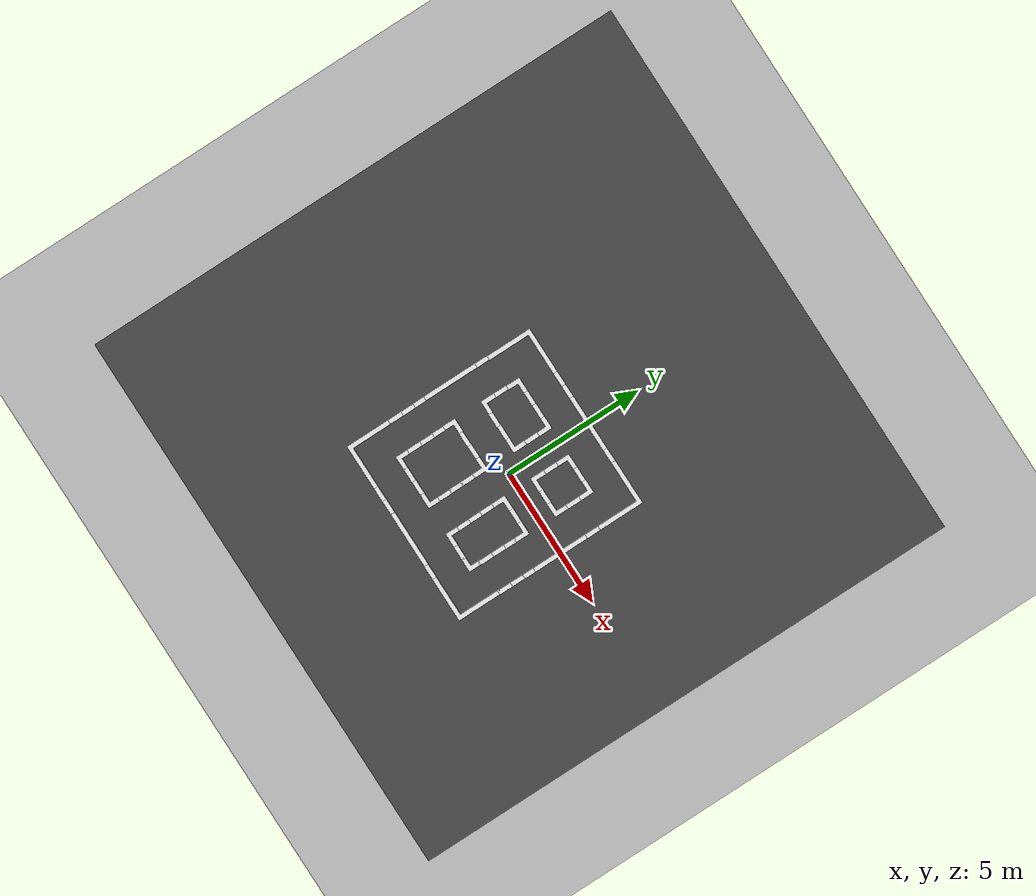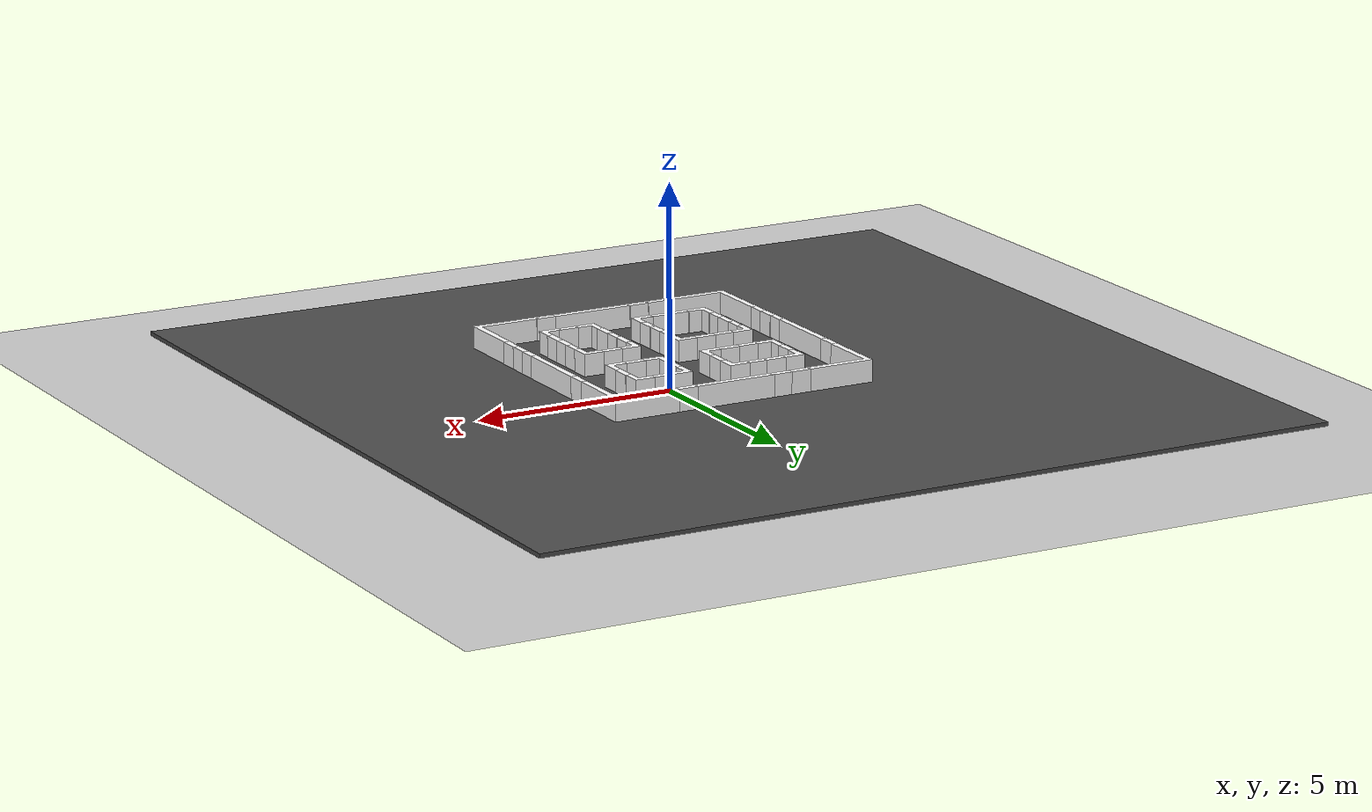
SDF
<sdf version="1.4">
 <world name="default">
  <light name="sun" type="directional">
   <pose>0 0 10 0 -0 0</pose>
   <diffuse>0.8 0.8 0.8 1</diffuse>
   <specular>0.2 0.2 0.2 1</specular>
   <attenuation>
    <range>1000</range>
    <constant>0.9</constant>
    <linear>0.01</linear>
    <quadratic>0.001</quadratic>
   </attenuation>
   <direction>-0.5 0.1 -0.9</direction>
  </light>
  <model name="ground_plane">
   <static>1</static>
   <link name="link">
    <collision name="collision">
     <geometry><plane><normal>0 0 1</normal><size>100 100</size></plane></geometry>
     <surface><friction><ode><mu>100</mu><mu2>50</mu2></ode></friction></surface>
    </collision>
    <visual name="visual">
     <cast_shadows>0</cast_shadows>
     <geometry><plane><normal>0 0 1</normal><size>100 100</size></plane></geometry>
     <material>
      <script><uri>file://media/materials/scripts/gazebo.material</uri><name>Gazebo/Grey</name></script>
     </material>
    </visual>
    <velocity_decay><linear>0</linear><angular>0</angular></velocity_decay>
   </link>
  </model>
  <physics type="ode">
   <max_step_size>0.001</max_step_size>
   <real_time_factor>1</real_time_factor>
   <real_time_update_rate>1000</real_time_update_rate>
   <gravity>0 0 -9.8</gravity>
  </physics>
  <scene><ambient>0.4 0.4 0.4 1</ambient><background>0.7 0.7 0.7 1</background><shadows>1</shadows></scene>
  <spherical_coordinates>
   <surface_model>EARTH_WGS84</surface_model>
   <latitude_deg>0</latitude_deg>
   <longitude_deg>0</longitude_deg>
   <elevation>0</elevation>
   <heading_deg>0</heading_deg>
  </spherical_coordinates>
  <model name="mc_street_junction">
   <static>1</static>
   <link name="street_link">
    <pose>0 0 0 1.5708 -0 0</pose>
    <collision name="street_collision">
     <geometry>
      <mesh>
       <uri>model://small_mascor_city_street_junction/meshes/maskor_city_street_straight_street.dae</uri>
       <scale>1 1 1</scale>
      </mesh>
     </geometry>
    </collision>
    <visual name="street_visual">
     <geometry>
      <mesh>
       <uri>model://small_mascor_city_street_junction/meshes/maskor_city_street_straight_street.dae</uri>
       <scale>1 1 1</scale>
      </mesh>
     </geometry>
    </visual>
    <velocity_decay><linear>0</linear><angular>0</angular></velocity_decay>
   </link>
   <link name="border_link">
    <pose>0 0 0.5 1.5708 -0 0</pose>
    <collision name="border_colision">
     <geometry>
      <mesh>
       <uri>model://small_mascor_city_street_junction/meshes/maskor_city_street_straight_border.dae</uri>
       <scale>1 1 1</scale>
      </mesh>
     </geometry>
    </collision>
    <visual name="border_visual">
     <geometry>
      <mesh>
       <uri>model://small_mascor_city_street_junction/meshes/maskor_city_street_straight_border.dae</uri>
       <scale>1 1 1</scale>
      </mesh>
     </geometry>
     <material><ambient>1 1 1 1</ambient><diffuse>1 1 1 1</diffuse></material>
    </visual>
    <velocity_decay><linear>0</linear><angular>0</angular></velocity_decay>
   </link>
  </model>
  <model name="mc_street_straight">
   <static>1</static>
   <link name="street_link">
    <pose>0 0 0 1.5708 -0 0</pose>
    <collision name="street_collision">
     <geometry>
      <mesh>
       <uri>model://small_mascor_city_street_straight/meshes/maskor_city_street_straight_street.dae</uri>
       <scale>1 1 1</scale>
      </mesh>
     </geometry>
    </collision>
    <visual name="street_visual">
     <geometry>
      <mesh>
       <uri>model://small_mascor_city_street_straight/meshes/maskor_city_street_straight_street.dae</uri>
       <scale>1 1 1</scale>
      </mesh>
     </geometry>
    </visual>
    <velocity_decay><linear>0</linear><angular>0</angular></velocity_decay>
   </link>
   <link name="border_link">
    <pose>0 0 0.5 1.5708 -0 0</pose>
    <collision name="border_colision">
     <geometry>
      <mesh>
       <uri>model://small_mascor_city_street_straight/meshes/maskor_city_street_straight_border.dae</uri>
       <scale>1 1 1</scale>
      </mesh>
     </geometry>
    </collision>
    <visual name="border_visual">
     <geometry>
      <mesh>
       <uri>model://small_mascor_city_street_straight/meshes/maskor_city_street_straight_border.dae</uri>
       <scale>1 1 1</scale>
      </mesh>
     </geometry>
     <material><ambient>1 1 1 1</ambient><diffuse>1 1 1 1</diffuse></material>
    </visual>
    <velocity_decay><linear>0</linear><angular>0</angular></velocity_decay>
   </link>
   <pose>0.003634 -1.2161 0 0 -0 0</pose>
  </model>
  <model name="mc_street_straight_0">
   <static>1</static>
   <link name="street_link">
    <pose>0 0 0 1.5708 -0 0</pose>
    <collision name="street_collision">
     <geometry>
      <mesh>
       <uri>model://small_mascor_city_street_straight/meshes/maskor_city_street_straight_street.dae</uri>
       <scale>1 1 1</scale>
      </mesh>
     </geometry>
    </collision>
    <visual name="street_visual">
     <geometry>
      <mesh>
       <uri>model://small_mascor_city_street_straight/meshes/maskor_city_street_straight_street.dae</uri>
       <scale>1 1 1</scale>
      </mesh>
     </geometry>
    </visual>
    <velocity_decay><linear>0</linear><angular>0</angular></velocity_decay>
   </link>
   <link name="border_link">
    <pose>0 0 0.5 1.5708 -0 0</pose>
    <collision name="border_colision">
     <geometry>
      <mesh>
       <uri>model://small_mascor_city_street_straight/meshes/maskor_city_street_straight_border.dae</uri>
       <scale>1 1 1</scale>
      </mesh>
     </geometry>
    </collision>
    <visual name="border_visual">
     <geometry>
      <mesh>
       <uri>model://small_mascor_city_street_straight/meshes/maskor_city_street_straight_border.dae</uri>
       <scale>1 1 1</scale>
      </mesh>
     </geometry>
     <material><ambient>1 1 1 1</ambient><diffuse>1 1 1 1</diffuse></material>
    </visual>
    <velocity_decay><linear>0</linear><angular>0</angular></velocity_decay>
   </link>
   <pose>0.006527 -1.65389 0 0 -0 0</pose>
  </model>
  <model name="mc_street_straight_1">
   <static>1</static>
   <link name="street_link">
    <pose>0 0 0 1.5708 -0 0</pose>
    <collision name="street_collision">
     <geometry>
      <mesh>
       <uri>model://small_mascor_city_street_straight/meshes/maskor_city_street_straight_street.dae</uri>
       <scale>1 1 1</scale>
      </mesh>
     </geometry>
    </collision>
    <visual name="street_visual">
     <geometry>
      <mesh>
       <uri>model://small_mascor_city_street_straight/meshes/maskor_city_street_straight_street.dae</uri>
       <scale>1 1 1</scale>
      </mesh>
     </geometry>
    </visual>
    <velocity_decay><linear>0</linear><angular>0</angular></velocity_decay>
   </link>
   <link name="border_link">
    <pose>0 0 0.5 1.5708 -0 0</pose>
    <collision name="border_colision">
     <geometry>
      <mesh>
       <uri>model://small_mascor_city_street_straight/meshes/maskor_city_street_straight_border.dae</uri>
       <scale>1 1 1</scale>
      </mesh>
     </geometry>
    </collision>
    <visual name="border_visual">
     <geometry>
      <mesh>
       <uri>model://small_mascor_city_street_straight/meshes/maskor_city_street_straight_border.dae</uri>
       <scale>1 1 1</scale>
      </mesh>
     </geometry>
     <material><ambient>1 1 1 1</ambient><diffuse>1 1 1 1</diffuse></material>
    </visual>
    <velocity_decay><linear>0</linear><angular>0</angular></velocity_decay>
   </link>
   <pose>0.014821 -2.10952 0 0 -0 0</pose>
  </model>
  <model name="mc_street_t_junction">
   <static>1</static>
   <link name="street_link">
    <pose>0 0 0 1.5708 -0 0</pose>
    <collision name="street_collision">
     <geometry>
      <mesh>
       <uri>model://small_mascor_city_street_t_junction/meshes/maskor_city_street_t_junction_road.dae</uri>
       <scale>1 1 1</scale>
      </mesh>
     </geometry>
    </collision>
    <visual name="street_visual">
     <geometry>
      <mesh>
       <uri>model://small_mascor_city_street_t_junction/meshes/maskor_city_street_t_junction_road.dae</uri>
       <scale>1 1 1</scale>
      </mesh>
     </geometry>
    </visual>
    <velocity_decay><linear>0</linear><angular>0</angular></velocity_decay>
   </link>
   <link name="border_link">
    <pose>0 0 0.5 1.5708 -0 0</pose>
    <collision name="border_colision">
     <geometry>
      <mesh>
       <uri>model://small_mascor_city_street_t_junction/meshes/maskor_city_street_t_junction_border.dae</uri>
       <scale>1 1 1</scale>
      </mesh>
     </geometry>
    </collision>
    <visual name="border_visual">
     <geometry>
      <mesh>
       <uri>model://small_mascor_city_street_t_junction/meshes/maskor_city_street_t_junction_border.dae</uri>
       <scale>1 1 1</scale>
      </mesh>
     </geometry>
     <material><ambient>1 1 1 1</ambient><diffuse>1 1 1 1</diffuse></material>
    </visual>
    <velocity_decay><linear>0</linear><angular>0</angular></velocity_decay>
   </link>
   <pose>0.014222 -3.28864 0 0 -0 1.5708</pose>
  </model>
  <model name="mc_street_straight_2">
   <static>1</static>
   <link name="street_link">
    <pose>0 0 0 1.5708 -0 0</pose>
    <collision name="street_collision">
     <geometry>
      <mesh>
       <uri>model://small_mascor_city_street_straight/meshes/maskor_city_street_straight_street.dae</uri>
       <scale>1 1 1</scale>
      </mesh>
     </geometry>
    </collision>
    <visual name="street_visual">
     <geometry>
      <mesh>
       <uri>model://small_mascor_city_street_straight/meshes/maskor_city_street_straight_street.dae</uri>
       <scale>1 1 1</scale>
      </mesh>
     </geometry>
    </visual>
    <velocity_decay><linear>0</linear><angular>0</angular></velocity_decay>
   </link>
   <link name="border_link">
    <pose>0 0 0.5 1.5708 -0 0</pose>
    <collision name="border_colision">
     <geometry>
      <mesh>
       <uri>model://small_mascor_city_street_straight/meshes/maskor_city_street_straight_border.dae</uri>
       <scale>1 1 1</scale>
      </mesh>
     </geometry>
    </collision>
    <visual name="border_visual">
     <geometry>
      <mesh>
       <uri>model://small_mascor_city_street_straight/meshes/maskor_city_street_straight_border.dae</uri>
       <scale>1 1 1</scale>
      </mesh>
     </geometry>
     <material><ambient>1 1 1 1</ambient><diffuse>1 1 1 1</diffuse></material>
    </visual>
    <velocity_decay><linear>0</linear><angular>0</angular></velocity_decay>
   </link>
   <pose>1.23345 0.004464 0 -0 -0 -1.5708</pose>
  </model>
  <model name="mc_street_t_junction_0">
   <static>1</static>
   <link name="street_link">
    <pose>0 0 0 1.5708 -0 0</pose>
    <collision name="street_collision">
     <geometry>
      <mesh>
       <uri>model://small_mascor_city_street_t_junction/meshes/maskor_city_street_t_junction_road.dae</uri>
       <scale>1 1 1</scale>
      </mesh>
     </geometry>
    </collision>
    <visual name="street_visual">
     <geometry>
      <mesh>
       <uri>model://small_mascor_city_street_t_junction/meshes/maskor_city_street_t_junction_road.dae</uri>
       <scale>1 1 1</scale>
      </mesh>
     </geometry>
    </visual>
    <velocity_decay><linear>0</linear><angular>0</angular></velocity_decay>
   </link>
   <link name="border_link">
    <pose>0 0 0.5 1.5708 -0 0</pose>
    <collision name="border_colision">
     <geometry>
      <mesh>
       <uri>model://small_mascor_city_street_t_junction/meshes/maskor_city_street_t_junction_border.dae</uri>
       <scale>1 1 1</scale>
      </mesh>
     </geometry>
    </collision>
    <visual name="border_visual">
     <geometry>
      <mesh>
       <uri>model://small_mascor_city_street_t_junction/meshes/maskor_city_street_t_junction_border.dae</uri>
       <scale>1 1 1</scale>
      </mesh>
     </geometry>
     <material><ambient>1 1 1 1</ambient><diffuse>1 1 1 1</diffuse></material>
    </visual>
    <velocity_decay><linear>0</linear><angular>0</angular></velocity_decay>
   </link>
   <pose>2.48023 0.000914 0 0 -0 3.1415</pose>
  </model>
  <model name="mc_street_straight_5">
   <static>1</static>
   <link name="street_link">
    <pose>0 0 0 1.5708 -0 0</pose>
    <collision name="street_collision">
     <geometry>
      <mesh>
       <uri>model://small_mascor_city_street_straight/meshes/maskor_city_street_straight_street.dae</uri>
       <scale>1 1 1</scale>
      </mesh>
     </geometry>
    </collision>
    <visual name="street_visual">
     <geometry>
      <mesh>
       <uri>model://small_mascor_city_street_straight/meshes/maskor_city_street_straight_street.dae</uri>
       <scale>1 1 1</scale>
      </mesh>
     </geometry>
    </visual>
    <velocity_decay><linear>0</linear><angular>0</angular></velocity_decay>
   </link>
   <link name="border_link">
    <pose>0 0 0.5 1.5708 -0 0</pose>
    <collision name="border_colision">
     <geometry>
      <mesh>
       <uri>model://small_mascor_city_street_straight/meshes/maskor_city_street_straight_border.dae</uri>
       <scale>1 1 1</scale>
      </mesh>
     </geometry>
    </collision>
    <visual name="border_visual">
     <geometry>
      <mesh>
       <uri>model://small_mascor_city_street_straight/meshes/maskor_city_street_straight_border.dae</uri>
       <scale>1 1 1</scale>
      </mesh>
     </geometry>
     <material><ambient>1 1 1 1</ambient><diffuse>1 1 1 1</diffuse></material>
    </visual>
    <velocity_decay><linear>0</linear><angular>0</angular></velocity_decay>
   </link>
   <pose>1.26513 -3.29481 0 -0 -0 -1.5708</pose>
  </model>
  <model name="mc_street_straight_6">
   <static>1</static>
   <link name="street_link">
    <pose>0 0 0 1.5708 -0 0</pose>
    <collision name="street_collision">
     <geometry>
      <mesh>
       <uri>model://small_mascor_city_street_straight/meshes/maskor_city_street_straight_street.dae</uri>
       <scale>1 1 1</scale>
      </mesh>
     </geometry>
    </collision>
    <visual name="street_visual">
     <geometry>
      <mesh>
       <uri>model://small_mascor_city_street_straight/meshes/maskor_city_street_straight_street.dae</uri>
       <scale>1 1 1</scale>
      </mesh>
     </geometry>
    </visual>
    <velocity_decay><linear>0</linear><angular>0</angular></velocity_decay>
   </link>
   <link name="border_link">
    <pose>0 0 0.5 1.5708 -0 0</pose>
    <collision name="border_colision">
     <geometry>
      <mesh>
       <uri>model://small_mascor_city_street_straight/meshes/maskor_city_street_straight_border.dae</uri>
       <scale>1 1 1</scale>
      </mesh>
     </geometry>
    </collision>
    <visual name="border_visual">
     <geometry>
      <mesh>
       <uri>model://small_mascor_city_street_straight/meshes/maskor_city_street_straight_border.dae</uri>
       <scale>1 1 1</scale>
      </mesh>
     </geometry>
     <material><ambient>1 1 1 1</ambient><diffuse>1 1 1 1</diffuse></material>
    </visual>
    <velocity_decay><linear>0</linear><angular>0</angular></velocity_decay>
   </link>
   <pose>2.47315 -2.12431 0 0 -0 0</pose>
  </model>
  <model name="mc_street_straight_7">
   <static>1</static>
   <link name="street_link">
    <pose>0 0 0 1.5708 -0 0</pose>
    <collision name="street_collision">
     <geometry>
      <mesh>
       <uri>model://small_mascor_city_street_straight/meshes/maskor_city_street_straight_street.dae</uri>
       <scale>1 1 1</scale>
      </mesh>
     </geometry>
    </collision>
    <visual name="street_visual">
     <geometry>
      <mesh>
       <uri>model://small_mascor_city_street_straight/meshes/maskor_city_street_straight_street.dae</uri>
       <scale>1 1 1</scale>
      </mesh>
     </geometry>
    </visual>
    <velocity_decay><linear>0</linear><angular>0</angular></velocity_decay>
   </link>
   <link name="border_link">
    <pose>0 0 0.5 1.5708 -0 0</pose>
    <collision name="border_colision">
     <geometry>
      <mesh>
       <uri>model://small_mascor_city_street_straight/meshes/maskor_city_street_straight_border.dae</uri>
       <scale>1 1 1</scale>
      </mesh>
     </geometry>
    </collision>
    <visual name="border_visual">
     <geometry>
      <mesh>
       <uri>model://small_mascor_city_street_straight/meshes/maskor_city_street_straight_border.dae</uri>
       <scale>1 1 1</scale>
      </mesh>
     </geometry>
     <material><ambient>1 1 1 1</ambient><diffuse>1 1 1 1</diffuse></material>
    </visual>
    <velocity_decay><linear>0</linear><angular>0</angular></velocity_decay>
   </link>
   <pose>2.47375 -1.65225 0 0 -0 0</pose>
  </model>
  <model name="mc_street_straight_8">
   <static>1</static>
   <link name="street_link">
    <pose>0 0 0 1.5708 -0 0</pose>
    <collision name="street_collision">
     <geometry>
      <mesh>
       <uri>model://small_mascor_city_street_straight/meshes/maskor_city_street_straight_street.dae</uri>
       <scale>1 1 1</scale>
      </mesh>
     </geometry>
    </collision>
    <visual name="street_visual">
     <geometry>
      <mesh>
       <uri>model://small_mascor_city_street_straight/meshes/maskor_city_street_straight_street.dae</uri>
       <scale>1 1 1</scale>
      </mesh>
     </geometry>
    </visual>
    <velocity_decay><linear>0</linear><angular>0</angular></velocity_decay>
   </link>
   <link name="border_link">
    <pose>0 0 0.5 1.5708 -0 0</pose>
    <collision name="border_colision">
     <geometry>
      <mesh>
       <uri>model://small_mascor_city_street_straight/meshes/maskor_city_street_straight_border.dae</uri>
       <scale>1 1 1</scale>
      </mesh>
     </geometry>
    </collision>
    <visual name="border_visual">
     <geometry>
      <mesh>
       <uri>model://small_mascor_city_street_straight/meshes/maskor_city_street_straight_border.dae</uri>
       <scale>1 1 1</scale>
      </mesh>
     </geometry>
     <material><ambient>1 1 1 1</ambient><diffuse>1 1 1 1</diffuse></material>
    </visual>
    <velocity_decay><linear>0</linear><angular>0</angular></velocity_decay>
   </link>
   <pose>2.47841 -1.1947 0 0 -0 0</pose>
  </model>
  <model name="mc_street_straight_9">
   <static>1</static>
   <link name="street_link">
    <pose>0 0 0 1.5708 -0 0</pose>
    <collision name="street_collision">
     <geometry>
      <mesh>
       <uri>model://small_mascor_city_street_straight/meshes/maskor_city_street_straight_street.dae</uri>
       <scale>1 1 1</scale>
      </mesh>
     </geometry>
    </collision>
    <visual name="street_visual">
     <geometry>
      <mesh>
       <uri>model://small_mascor_city_street_straight/meshes/maskor_city_street_straight_street.dae</uri>
       <scale>1 1 1</scale>
      </mesh>
     </geometry>
    </visual>
    <velocity_decay><linear>0</linear><angular>0</angular></velocity_decay>
   </link>
   <link name="border_link">
    <pose>0 0 0.5 1.5708 -0 0</pose>
    <collision name="border_colision">
     <geometry>
      <mesh>
       <uri>model://small_mascor_city_street_straight/meshes/maskor_city_street_straight_border.dae</uri>
       <scale>1 1 1</scale>
      </mesh>
     </geometry>
    </collision>
    <visual name="border_visual">
     <geometry>
      <mesh>
       <uri>model://small_mascor_city_street_straight/meshes/maskor_city_street_straight_border.dae</uri>
       <scale>1 1 1</scale>
      </mesh>
     </geometry>
     <material><ambient>1 1 1 1</ambient><diffuse>1 1 1 1</diffuse></material>
    </visual>
    <velocity_decay><linear>0</linear><angular>0</angular></velocity_decay>
   </link>
   <pose>-1.74011 -3.29095 0 0 -0 1.5708</pose>
  </model>
  <model name="mc_street_straight_10">
   <static>1</static>
   <link name="street_link">
    <pose>0 0 0 1.5708 -0 0</pose>
    <collision name="street_collision">
     <geometry>
      <mesh>
       <uri>model://small_mascor_city_street_straight/meshes/maskor_city_street_straight_street.dae</uri>
       <scale>1 1 1</scale>
      </mesh>
     </geometry>
    </collision>
    <visual name="street_visual">
     <geometry>
      <mesh>
       <uri>model://small_mascor_city_street_straight/meshes/maskor_city_street_straight_street.dae</uri>
       <scale>1 1 1</scale>
      </mesh>
     </geometry>
    </visual>
    <velocity_decay><linear>0</linear><angular>0</angular></velocity_decay>
   </link>
   <link name="border_link">
    <pose>0 0 0.5 1.5708 -0 0</pose>
    <collision name="border_colision">
     <geometry>
      <mesh>
       <uri>model://small_mascor_city_street_straight/meshes/maskor_city_street_straight_border.dae</uri>
       <scale>1 1 1</scale>
      </mesh>
     </geometry>
    </collision>
    <visual name="border_visual">
     <geometry>
      <mesh>
       <uri>model://small_mascor_city_street_straight/meshes/maskor_city_street_straight_border.dae</uri>
       <scale>1 1 1</scale>
      </mesh>
     </geometry>
     <material><ambient>1 1 1 1</ambient><diffuse>1 1 1 1</diffuse></material>
    </visual>
    <velocity_decay><linear>0</linear><angular>0</angular></velocity_decay>
   </link>
   <pose>-1.73513 -0.011035 0 0 -0 1.5708</pose>
  </model>
  <model name="mc_street_straight_11">
   <static>1</static>
   <link name="street_link">
    <pose>0 0 0 1.5708 -0 0</pose>
    <collision name="street_collision">
     <geometry>
      <mesh>
       <uri>model://small_mascor_city_street_straight/meshes/maskor_city_street_straight_street.dae</uri>
       <scale>1 1 1</scale>
      </mesh>
     </geometry>
    </collision>
    <visual name="street_visual">
     <geometry>
      <mesh>
       <uri>model://small_mascor_city_street_straight/meshes/maskor_city_street_straight_street.dae</uri>
       <scale>1 1 1</scale>
      </mesh>
     </geometry>
    </visual>
    <velocity_decay><linear>0</linear><angular>0</angular></velocity_decay>
   </link>
   <link name="border_link">
    <pose>0 0 0.5 1.5708 -0 0</pose>
    <collision name="border_colision">
     <geometry>
      <mesh>
       <uri>model://small_mascor_city_street_straight/meshes/maskor_city_street_straight_border.dae</uri>
       <scale>1 1 1</scale>
      </mesh>
     </geometry>
    </collision>
    <visual name="border_visual">
     <geometry>
      <mesh>
       <uri>model://small_mascor_city_street_straight/meshes/maskor_city_street_straight_border.dae</uri>
       <scale>1 1 1</scale>
      </mesh>
     </geometry>
     <material><ambient>1 1 1 1</ambient><diffuse>1 1 1 1</diffuse></material>
    </visual>
    <velocity_decay><linear>0</linear><angular>0</angular></velocity_decay>
   </link>
   <pose>1.24186 2.48067 0 -0 -0 -1.5708</pose>
  </model>
  <model name="mc_street_straight_12">
   <static>1</static>
   <link name="street_link">
    <pose>0 0 0 1.5708 -0 0</pose>
    <collision name="street_collision">
     <geometry>
      <mesh>
       <uri>model://small_mascor_city_street_straight/meshes/maskor_city_street_straight_street.dae</uri>
       <scale>1 1 1</scale>
      </mesh>
     </geometry>
    </collision>
    <visual name="street_visual">
     <geometry>
      <mesh>
       <uri>model://small_mascor_city_street_straight/meshes/maskor_city_street_straight_street.dae</uri>
       <scale>1 1 1</scale>
      </mesh>
     </geometry>
    </visual>
    <velocity_decay><linear>0</linear><angular>0</angular></velocity_decay>
   </link>
   <link name="border_link">
    <pose>0 0 0.5 1.5708 -0 0</pose>
    <collision name="border_colision">
     <geometry>
      <mesh>
       <uri>model://small_mascor_city_street_straight/meshes/maskor_city_street_straight_border.dae</uri>
       <scale>1 1 1</scale>
      </mesh>
     </geometry>
    </collision>
    <visual name="border_visual">
     <geometry>
      <mesh>
       <uri>model://small_mascor_city_street_straight/meshes/maskor_city_street_straight_border.dae</uri>
       <scale>1 1 1</scale>
      </mesh>
     </geometry>
     <material><ambient>1 1 1 1</ambient><diffuse>1 1 1 1</diffuse></material>
    </visual>
    <velocity_decay><linear>0</linear><angular>0</angular></velocity_decay>
   </link>
   <pose>-1.23894 0.000948 0 0 -0 1.5708</pose>
  </model>
  <model name="mc_street_straight_13">
   <static>1</static>
   <link name="street_link">
    <pose>0 0 0 1.5708 -0 0</pose>
    <collision name="street_collision">
     <geometry>
      <mesh>
       <uri>model://small_mascor_city_street_straight/meshes/maskor_city_street_straight_street.dae</uri>
       <scale>1 1 1</scale>
      </mesh>
     </geometry>
    </collision>
    <visual name="street_visual">
     <geometry>
      <mesh>
       <uri>model://small_mascor_city_street_straight/meshes/maskor_city_street_straight_street.dae</uri>
       <scale>1 1 1</scale>
      </mesh>
     </geometry>
    </visual>
    <velocity_decay><linear>0</linear><angular>0</angular></velocity_decay>
   </link>
   <link name="border_link">
    <pose>0 0 0.5 1.5708 -0 0</pose>
    <collision name="border_colision">
     <geometry>
      <mesh>
       <uri>model://small_mascor_city_street_straight/meshes/maskor_city_street_straight_border.dae</uri>
       <scale>1 1 1</scale>
      </mesh>
     </geometry>
    </collision>
    <visual name="border_visual">
     <geometry>
      <mesh>
       <uri>model://small_mascor_city_street_straight/meshes/maskor_city_street_straight_border.dae</uri>
       <scale>1 1 1</scale>
      </mesh>
     </geometry>
     <material><ambient>1 1 1 1</ambient><diffuse>1 1 1 1</diffuse></material>
    </visual>
    <velocity_decay><linear>0</linear><angular>0</angular></velocity_decay>
   </link>
   <pose>-1.23765 -3.28734 0 0 -0 1.5708</pose>
  </model>
  <model name="mc_street_straight_14">
   <static>1</static>
   <link name="street_link">
    <pose>0 0 0 1.5708 -0 0</pose>
    <collision name="street_collision">
     <geometry>
      <mesh>
       <uri>model://small_mascor_city_street_straight/meshes/maskor_city_street_straight_street.dae</uri>
       <scale>1 1 1</scale>
      </mesh>
     </geometry>
    </collision>
    <visual name="street_visual">
     <geometry>
      <mesh>
       <uri>model://small_mascor_city_street_straight/meshes/maskor_city_street_straight_street.dae</uri>
       <scale>1 1 1</scale>
      </mesh>
     </geometry>
    </visual>
    <velocity_decay><linear>0</linear><angular>0</angular></velocity_decay>
   </link>
   <link name="border_link">
    <pose>0 0 0.5 1.5708 -0 0</pose>
    <collision name="border_colision">
     <geometry>
      <mesh>
       <uri>model://small_mascor_city_street_straight/meshes/maskor_city_street_straight_border.dae</uri>
       <scale>1 1 1</scale>
      </mesh>
     </geometry>
    </collision>
    <visual name="border_visual">
     <geometry>
      <mesh>
       <uri>model://small_mascor_city_street_straight/meshes/maskor_city_street_straight_border.dae</uri>
       <scale>1 1 1</scale>
      </mesh>
     </geometry>
     <material><ambient>1 1 1 1</ambient><diffuse>1 1 1 1</diffuse></material>
    </visual>
    <velocity_decay><linear>0</linear><angular>0</angular></velocity_decay>
   </link>
   <pose>-1.20782 2.47674 0 0 -0 1.5708</pose>
  </model>
  <model name="mc_street_straight_15">
   <static>1</static>
   <link name="street_link">
    <pose>0 0 0 1.5708 -0 0</pose>
    <collision name="street_collision">
     <geometry>
      <mesh>
       <uri>model://small_mascor_city_street_straight/meshes/maskor_city_street_straight_street.dae</uri>
       <scale>1 1 1</scale>
      </mesh>
     </geometry>
    </collision>
    <visual name="street_visual">
     <geometry>
      <mesh>
       <uri>model://small_mascor_city_street_straight/meshes/maskor_city_street_straight_street.dae</uri>
       <scale>1 1 1</scale>
      </mesh>
     </geometry>
    </visual>
    <velocity_decay><linear>0</linear><angular>0</angular></velocity_decay>
   </link>
   <link name="border_link">
    <pose>0 0 0.5 1.5708 -0 0</pose>
    <collision name="border_colision">
     <geometry>
      <mesh>
       <uri>model://small_mascor_city_street_straight/meshes/maskor_city_street_straight_border.dae</uri>
       <scale>1 1 1</scale>
      </mesh>
     </geometry>
    </collision>
    <visual name="border_visual">
     <geometry>
      <mesh>
       <uri>model://small_mascor_city_street_straight/meshes/maskor_city_street_straight_border.dae</uri>
       <scale>1 1 1</scale>
      </mesh>
     </geometry>
     <material><ambient>1 1 1 1</ambient><diffuse>1 1 1 1</diffuse></material>
    </visual>
    <velocity_decay><linear>0</linear><angular>0</angular></velocity_decay>
   </link>
   <pose>2.48332 1.24796 0 0 -0 0</pose>
  </model>
  <model name="mc_street_straight_16">
   <static>1</static>
   <link name="street_link">
    <pose>0 0 0 1.5708 -0 0</pose>
    <collision name="street_collision">
     <geometry>
      <mesh>
       <uri>model://small_mascor_city_street_straight/meshes/maskor_city_street_straight_street.dae</uri>
       <scale>1 1 1</scale>
      </mesh>
     </geometry>
    </collision>
    <visual name="street_visual">
     <geometry>
      <mesh>
       <uri>model://small_mascor_city_street_straight/meshes/maskor_city_street_straight_street.dae</uri>
       <scale>1 1 1</scale>
      </mesh>
     </geometry>
    </visual>
    <velocity_decay><linear>0</linear><angular>0</angular></velocity_decay>
   </link>
   <link name="border_link">
    <pose>0 0 0.5 1.5708 -0 0</pose>
    <collision name="border_colision">
     <geometry>
      <mesh>
       <uri>model://small_mascor_city_street_straight/meshes/maskor_city_street_straight_border.dae</uri>
       <scale>1 1 1</scale>
      </mesh>
     </geometry>
    </collision>
    <visual name="border_visual">
     <geometry>
      <mesh>
       <uri>model://small_mascor_city_street_straight/meshes/maskor_city_street_straight_border.dae</uri>
       <scale>1 1 1</scale>
      </mesh>
     </geometry>
     <material><ambient>1 1 1 1</ambient><diffuse>1 1 1 1</diffuse></material>
    </visual>
    <velocity_decay><linear>0</linear><angular>0</angular></velocity_decay>
   </link>
   <pose>-0.000341 1.2409 0 0 -0 0</pose>
  </model>
  <model name="mc_street_t_junction_1">
   <static>1</static>
   <link name="street_link">
    <pose>0 0 0 1.5708 -0 0</pose>
    <collision name="street_collision">
     <geometry>
      <mesh>
       <uri>model://small_mascor_city_street_t_junction/meshes/maskor_city_street_t_junction_road.dae</uri>
       <scale>1 1 1</scale>
      </mesh>
     </geometry>
    </collision>
    <visual name="street_visual">
     <geometry>
      <mesh>
       <uri>model://small_mascor_city_street_t_junction/meshes/maskor_city_street_t_junction_road.dae</uri>
       <scale>1 1 1</scale>
      </mesh>
     </geometry>
    </visual>
    <velocity_decay><linear>0</linear><angular>0</angular></velocity_decay>
   </link>
   <link name="border_link">
    <pose>0 0 0.5 1.5708 -0 0</pose>
    <collision name="border_colision">
     <geometry>
      <mesh>
       <uri>model://small_mascor_city_street_t_junction/meshes/maskor_city_street_t_junction_border.dae</uri>
       <scale>1 1 1</scale>
      </mesh>
     </geometry>
    </collision>
    <visual name="border_visual">
     <geometry>
      <mesh>
       <uri>model://small_mascor_city_street_t_junction/meshes/maskor_city_street_t_junction_border.dae</uri>
       <scale>1 1 1</scale>
      </mesh>
     </geometry>
     <material><ambient>1 1 1 1</ambient><diffuse>1 1 1 1</diffuse></material>
    </visual>
    <velocity_decay><linear>0</linear><angular>0</angular></velocity_decay>
   </link>
   <pose>0.002955 2.47793 0 -0 -0 -1.5708</pose>
  </model>
  <model name="mc_street_straight_17">
   <static>1</static>
   <link name="street_link">
    <pose>0 0 0 1.5708 -0 0</pose>
    <collision name="street_collision">
     <geometry>
      <mesh>
       <uri>model://small_mascor_city_street_straight/meshes/maskor_city_street_straight_street.dae</uri>
       <scale>1 1 1</scale>
      </mesh>
     </geometry>
    </collision>
    <visual name="street_visual">
     <geometry>
      <mesh>
       <uri>model://small_mascor_city_street_straight/meshes/maskor_city_street_straight_street.dae</uri>
       <scale>1 1 1</scale>
      </mesh>
     </geometry>
    </visual>
    <velocity_decay><linear>0</linear><angular>0</angular></velocity_decay>
   </link>
   <link name="border_link">
    <pose>0 0 0.5 1.5708 -0 0</pose>
    <collision name="border_colision">
     <geometry>
      <mesh>
       <uri>model://small_mascor_city_street_straight/meshes/maskor_city_street_straight_border.dae</uri>
       <scale>1 1 1</scale>
      </mesh>
     </geometry>
    </collision>
    <visual name="border_visual">
     <geometry>
      <mesh>
       <uri>model://small_mascor_city_street_straight/meshes/maskor_city_street_straight_border.dae</uri>
       <scale>1 1 1</scale>
      </mesh>
     </geometry>
     <material><ambient>1 1 1 1</ambient><diffuse>1 1 1 1</diffuse></material>
    </visual>
    <velocity_decay><linear>0</linear><angular>0</angular></velocity_decay>
   </link>
   <pose>-2.96176 -2.10185 0 0 -0 0</pose>
  </model>
  <model name="mc_street_straight_18">
   <static>1</static>
   <link name="street_link">
    <pose>0 0 0 1.5708 -0 0</pose>
    <collision name="street_collision">
     <geometry>
      <mesh>
       <uri>model://small_mascor_city_street_straight/meshes/maskor_city_street_straight_street.dae</uri>
       <scale>1 1 1</scale>
      </mesh>
     </geometry>
    </collision>
    <visual name="street_visual">
     <geometry>
      <mesh>
       <uri>model://small_mascor_city_street_straight/meshes/maskor_city_street_straight_street.dae</uri>
       <scale>1 1 1</scale>
      </mesh>
     </geometry>
    </visual>
    <velocity_decay><linear>0</linear><angular>0</angular></velocity_decay>
   </link>
   <link name="border_link">
    <pose>0 0 0.5 1.5708 -0 0</pose>
    <collision name="border_colision">
     <geometry>
      <mesh>
       <uri>model://small_mascor_city_street_straight/meshes/maskor_city_street_straight_border.dae</uri>
       <scale>1 1 1</scale>
      </mesh>
     </geometry>
    </collision>
    <visual name="border_visual">
     <geometry>
      <mesh>
       <uri>model://small_mascor_city_street_straight/meshes/maskor_city_street_straight_border.dae</uri>
       <scale>1 1 1</scale>
      </mesh>
     </geometry>
     <material><ambient>1 1 1 1</ambient><diffuse>1 1 1 1</diffuse></material>
    </visual>
    <velocity_decay><linear>0</linear><angular>0</angular></velocity_decay>
   </link>
   <pose>-2.95782 -1.63173 0 0 -0 0</pose>
  </model>
  <model name="mc_street_straight_19">
   <static>1</static>
   <link name="street_link">
    <pose>0 0 0 1.5708 -0 0</pose>
    <collision name="street_collision">
     <geometry>
      <mesh>
       <uri>model://small_mascor_city_street_straight/meshes/maskor_city_street_straight_street.dae</uri>
       <scale>1 1 1</scale>
      </mesh>
     </geometry>
    </collision>
    <visual name="street_visual">
     <geometry>
      <mesh>
       <uri>model://small_mascor_city_street_straight/meshes/maskor_city_street_straight_street.dae</uri>
       <scale>1 1 1</scale>
      </mesh>
     </geometry>
    </visual>
    <velocity_decay><linear>0</linear><angular>0</angular></velocity_decay>
   </link>
   <link name="border_link">
    <pose>0 0 0.5 1.5708 -0 0</pose>
    <collision name="border_colision">
     <geometry>
      <mesh>
       <uri>model://small_mascor_city_street_straight/meshes/maskor_city_street_straight_border.dae</uri>
       <scale>1 1 1</scale>
      </mesh>
     </geometry>
    </collision>
    <visual name="border_visual">
     <geometry>
      <mesh>
       <uri>model://small_mascor_city_street_straight/meshes/maskor_city_street_straight_border.dae</uri>
       <scale>1 1 1</scale>
      </mesh>
     </geometry>
     <material><ambient>1 1 1 1</ambient><diffuse>1 1 1 1</diffuse></material>
    </visual>
    <velocity_decay><linear>0</linear><angular>0</angular></velocity_decay>
   </link>
   <pose>-2.96539 -1.2189 0 0 -0 0</pose>
  </model>
  <model name="mc_street_t_junction_2">
   <static>1</static>
   <link name="street_link">
    <pose>0 0 0 1.5708 -0 0</pose>
    <collision name="street_collision">
     <geometry>
      <mesh>
       <uri>model://small_mascor_city_street_t_junction/meshes/maskor_city_street_t_junction_road.dae</uri>
       <scale>1 1 1</scale>
      </mesh>
     </geometry>
    </collision>
    <visual name="street_visual">
     <geometry>
      <mesh>
       <uri>model://small_mascor_city_street_t_junction/meshes/maskor_city_street_t_junction_road.dae</uri>
       <scale>1 1 1</scale>
      </mesh>
     </geometry>
    </visual>
    <velocity_decay><linear>0</linear><angular>0</angular></velocity_decay>
   </link>
   <link name="border_link">
    <pose>0 0 0.5 1.5708 -0 0</pose>
    <collision name="border_colision">
     <geometry>
      <mesh>
       <uri>model://small_mascor_city_street_t_junction/meshes/maskor_city_street_t_junction_border.dae</uri>
       <scale>1 1 1</scale>
      </mesh>
     </geometry>
    </collision>
    <visual name="border_visual">
     <geometry>
      <mesh>
       <uri>model://small_mascor_city_street_t_junction/meshes/maskor_city_street_t_junction_border.dae</uri>
       <scale>1 1 1</scale>
      </mesh>
     </geometry>
     <material><ambient>1 1 1 1</ambient><diffuse>1 1 1 1</diffuse></material>
    </visual>
    <velocity_decay><linear>0</linear><angular>0</angular></velocity_decay>
   </link>
   <pose>-2.97232 0.00267 0 0 -0 0</pose>
  </model>
  <model name="mc_street_straight_20">
   <static>1</static>
   <link name="street_link">
    <pose>0 0 0 1.5708 -0 0</pose>
    <collision name="street_collision">
     <geometry>
      <mesh>
       <uri>model://small_mascor_city_street_straight/meshes/maskor_city_street_straight_street.dae</uri>
       <scale>1 1 1</scale>
      </mesh>
     </geometry>
    </collision>
    <visual name="street_visual">
     <geometry>
      <mesh>
       <uri>model://small_mascor_city_street_straight/meshes/maskor_city_street_straight_street.dae</uri>
       <scale>1 1 1</scale>
      </mesh>
     </geometry>
    </visual>
    <velocity_decay><linear>0</linear><angular>0</angular></velocity_decay>
   </link>
   <link name="border_link">
    <pose>0 0 0.5 1.5708 -0 0</pose>
    <collision name="border_colision">
     <geometry>
      <mesh>
       <uri>model://small_mascor_city_street_straight/meshes/maskor_city_street_straight_border.dae</uri>
       <scale>1 1 1</scale>
      </mesh>
     </geometry>
    </collision>
    <visual name="border_visual">
     <geometry>
      <mesh>
       <uri>model://small_mascor_city_street_straight/meshes/maskor_city_street_straight_border.dae</uri>
       <scale>1 1 1</scale>
      </mesh>
     </geometry>
     <material><ambient>1 1 1 1</ambient><diffuse>1 1 1 1</diffuse></material>
    </visual>
    <velocity_decay><linear>0</linear><angular>0</angular></velocity_decay>
   </link>
   <pose>-2.96813 1.22753 0 0 -0 0</pose>
  </model>
  <model name="mc_street_straight_21">
   <static>1</static>
   <link name="street_link">
    <pose>0 0 0 1.5708 -0 0</pose>
    <collision name="street_collision">
     <geometry>
      <mesh>
       <uri>model://small_mascor_city_street_straight/meshes/maskor_city_street_straight_street.dae</uri>
       <scale>1 1 1</scale>
      </mesh>
     </geometry>
    </collision>
    <visual name="street_visual">
     <geometry>
      <mesh>
       <uri>model://small_mascor_city_street_straight/meshes/maskor_city_street_straight_street.dae</uri>
       <scale>1 1 1</scale>
      </mesh>
     </geometry>
    </visual>
    <velocity_decay><linear>0</linear><angular>0</angular></velocity_decay>
   </link>
   <link name="border_link">
    <pose>0 0 0.5 1.5708 -0 0</pose>
    <collision name="border_colision">
     <geometry>
      <mesh>
       <uri>model://small_mascor_city_street_straight/meshes/maskor_city_street_straight_border.dae</uri>
       <scale>1 1 1</scale>
      </mesh>
     </geometry>
    </collision>
    <visual name="border_visual">
     <geometry>
      <mesh>
       <uri>model://small_mascor_city_street_straight/meshes/maskor_city_street_straight_border.dae</uri>
       <scale>1 1 1</scale>
      </mesh>
     </geometry>
     <material><ambient>1 1 1 1</ambient><diffuse>1 1 1 1</diffuse></material>
    </visual>
    <velocity_decay><linear>0</linear><angular>0</angular></velocity_decay>
   </link>
   <pose>-1.70744 2.4765 0 0 -0 1.5708</pose>
  </model>
  <model name="mc_street_turn_3">
   <static>1</static>
   <link name="street_link">
    <pose>0 0 0 1.5708 -0 0</pose>
    <collision name="street_collision">
     <geometry>
      <mesh>
       <uri>model://small_mascor_city_street_turn/meshes/maskor_city_street_turn_street.dae</uri>
       <scale>1 1 1</scale>
      </mesh>
     </geometry>
    </collision>
    <visual name="street_visual">
     <geometry>
      <mesh>
       <uri>model://small_mascor_city_street_turn/meshes/maskor_city_street_turn_street.dae</uri>
       <scale>1 1 1</scale>
      </mesh>
     </geometry>
    </visual>
    <velocity_decay><linear>0</linear><angular>0</angular></velocity_decay>
   </link>
   <link name="border_link">
    <pose>0 0 0.5 1.5708 -0 0</pose>
    <collision name="border_colision">
     <geometry>
      <mesh>
       <uri>model://small_mascor_city_street_turn/meshes/maskor_city_street_turn_border.dae</uri>
       <scale>1 1 1</scale>
      </mesh>
     </geometry>
    </collision>
    <visual name="border_visual">
     <geometry>
      <mesh>
       <uri>model://small_mascor_city_street_turn/meshes/maskor_city_street_turn_border.dae</uri>
       <scale>1 1 1</scale>
      </mesh>
     </geometry>
     <material><ambient>1 1 1 1</ambient><diffuse>1 1 1 1</diffuse></material>
    </visual>
    <velocity_decay><linear>0</linear><angular>0</angular></velocity_decay>
   </link>
   <pose>1.78027 2.48667 0 -0 -0 -1.5708</pose>
  </model>
  <model name="mc_street_turn_4">
   <static>1</static>
   <link name="street_link">
    <pose>0 0 0 1.5708 -0 0</pose>
    <collision name="street_collision">
     <geometry>
      <mesh>
       <uri>model://small_mascor_city_street_turn/meshes/maskor_city_street_turn_street.dae</uri>
       <scale>1 1 1</scale>
      </mesh>
     </geometry>
    </collision>
    <visual name="street_visual">
     <geometry>
      <mesh>
       <uri>model://small_mascor_city_street_turn/meshes/maskor_city_street_turn_street.dae</uri>
       <scale>1 1 1</scale>
      </mesh>
     </geometry>
    </visual>
    <velocity_decay><linear>0</linear><angular>0</angular></velocity_decay>
   </link>
   <link name="border_link">
    <pose>0 0 0.5 1.5708 -0 0</pose>
    <collision name="border_colision">
     <geometry>
      <mesh>
       <uri>model://small_mascor_city_street_turn/meshes/maskor_city_street_turn_border.dae</uri>
       <scale>1 1 1</scale>
      </mesh>
     </geometry>
    </collision>
    <visual name="border_visual">
     <geometry>
      <mesh>
       <uri>model://small_mascor_city_street_turn/meshes/maskor_city_street_turn_border.dae</uri>
       <scale>1 1 1</scale>
      </mesh>
     </geometry>
     <material><ambient>1 1 1 1</ambient><diffuse>1 1 1 1</diffuse></material>
    </visual>
    <velocity_decay><linear>0</linear><angular>0</angular></velocity_decay>
   </link>
   <pose>2.46079 -2.59839 0 0 -0 3.1415</pose>
  </model>
  <model name="mc_street_turn_5">
   <static>1</static>
   <link name="street_link">
    <pose>0 0 0 1.5708 -0 0</pose>
    <collision name="street_collision">
     <geometry>
      <mesh>
       <uri>model://small_mascor_city_street_turn/meshes/maskor_city_street_turn_street.dae</uri>
       <scale>1 1 1</scale>
      </mesh>
     </geometry>
    </collision>
    <visual name="street_visual">
     <geometry>
      <mesh>
       <uri>model://small_mascor_city_street_turn/meshes/maskor_city_street_turn_street.dae</uri>
       <scale>1 1 1</scale>
      </mesh>
     </geometry>
    </visual>
    <velocity_decay><linear>0</linear><angular>0</angular></velocity_decay>
   </link>
   <link name="border_link">
    <pose>0 0 0.5 1.5708 -0 0</pose>
    <collision name="border_colision">
     <geometry>
      <mesh>
       <uri>model://small_mascor_city_street_turn/meshes/maskor_city_street_turn_border.dae</uri>
       <scale>1 1 1</scale>
      </mesh>
     </geometry>
    </collision>
    <visual name="border_visual">
     <geometry>
      <mesh>
       <uri>model://small_mascor_city_street_turn/meshes/maskor_city_street_turn_border.dae</uri>
       <scale>1 1 1</scale>
      </mesh>
     </geometry>
     <material><ambient>1 1 1 1</ambient><diffuse>1 1 1 1</diffuse></material>
    </visual>
    <velocity_decay><linear>0</linear><angular>0</angular></velocity_decay>
   </link>
   <pose>-2.26013 -3.28878 0 0 -0 1.5708</pose>
  </model>
  <model name="mc_street_turn_6">
   <static>1</static>
   <link name="street_link">
    <pose>0 0 0 1.5708 -0 0</pose>
    <collision name="street_collision">
     <geometry>
      <mesh>
       <uri>model://small_mascor_city_street_turn/meshes/maskor_city_street_turn_street.dae</uri>
       <scale>1 1 1</scale>
      </mesh>
     </geometry>
    </collision>
    <visual name="street_visual">
     <geometry>
      <mesh>
       <uri>model://small_mascor_city_street_turn/meshes/maskor_city_street_turn_street.dae</uri>
       <scale>1 1 1</scale>
      </mesh>
     </geometry>
    </visual>
    <velocity_decay><linear>0</linear><angular>0</angular></velocity_decay>
   </link>
   <link name="border_link">
    <pose>0 0 0.5 1.5708 -0 0</pose>
    <collision name="border_colision">
     <geometry>
      <mesh>
       <uri>model://small_mascor_city_street_turn/meshes/maskor_city_street_turn_border.dae</uri>
       <scale>1 1 1</scale>
      </mesh>
     </geometry>
    </collision>
    <visual name="border_visual">
     <geometry>
      <mesh>
       <uri>model://small_mascor_city_street_turn/meshes/maskor_city_street_turn_border.dae</uri>
       <scale>1 1 1</scale>
      </mesh>
     </geometry>
     <material><ambient>1 1 1 1</ambient><diffuse>1 1 1 1</diffuse></material>
    </visual>
    <velocity_decay><linear>0</linear><angular>0</angular></velocity_decay>
   </link>
   <pose>-2.95187 1.77637 0 0 -0 0</pose>
  </model>
  <model name="asphalt_plane">
   <static>1</static>
   <link name="link">
    <collision name="collision"><geometry><box><size>20 20 0.1</size></box></geometry></collision>
    <visual name="visual">
     <cast_shadows>0</cast_shadows>
     <geometry><box><size>20 20 0.1</size></box></geometry>
     <material>
      <script>
       <uri>model://asphalt_plane/materials/scripts</uri>
       <uri>model://asphalt_plane/materials/textures</uri>
       <name>vrc/asphalt</name>
      </script>
     </material>
    </visual>
    <velocity_decay><linear>0</linear><angular>0</angular></velocity_decay>
   </link>
   <pose>-0.862652 0.964285 0.46374 0 -0 0</pose>
  </model>
 </world>
</sdf>
